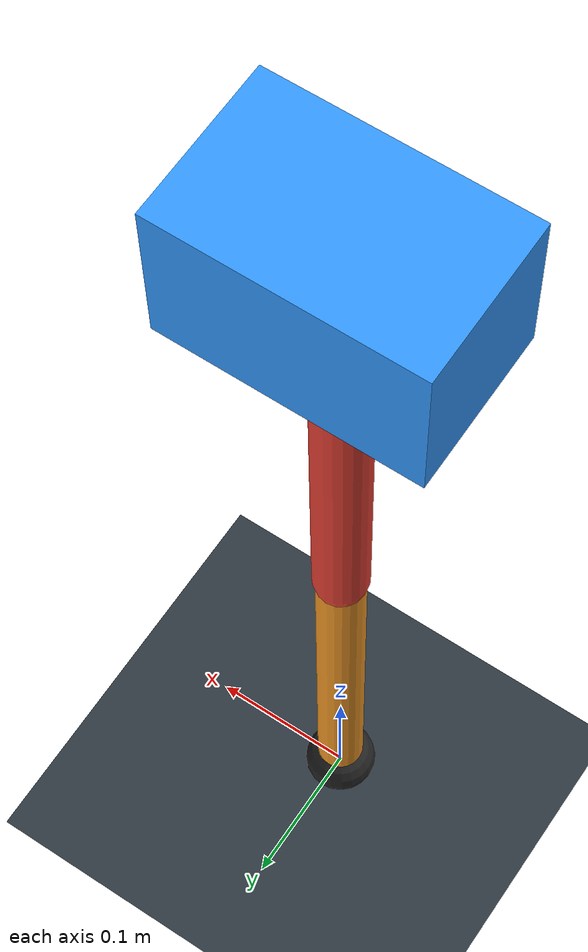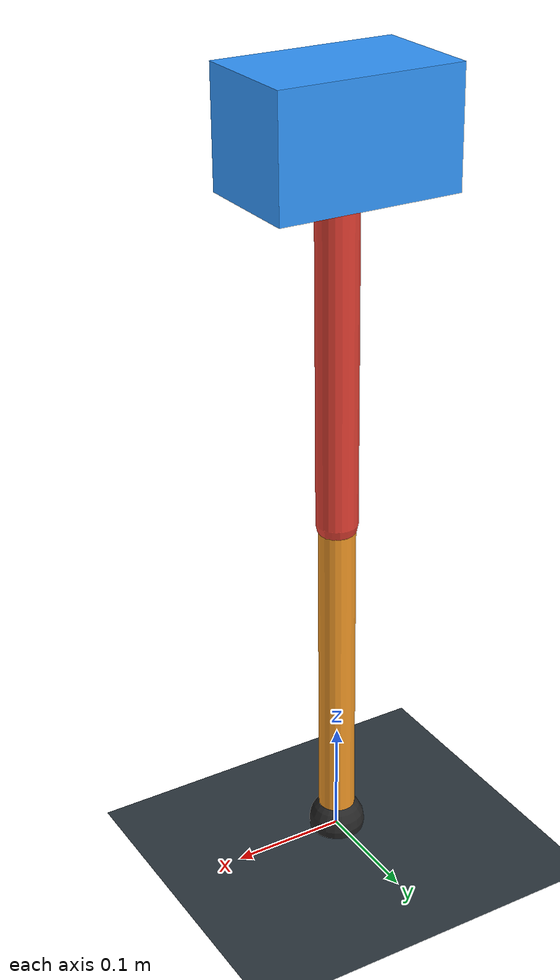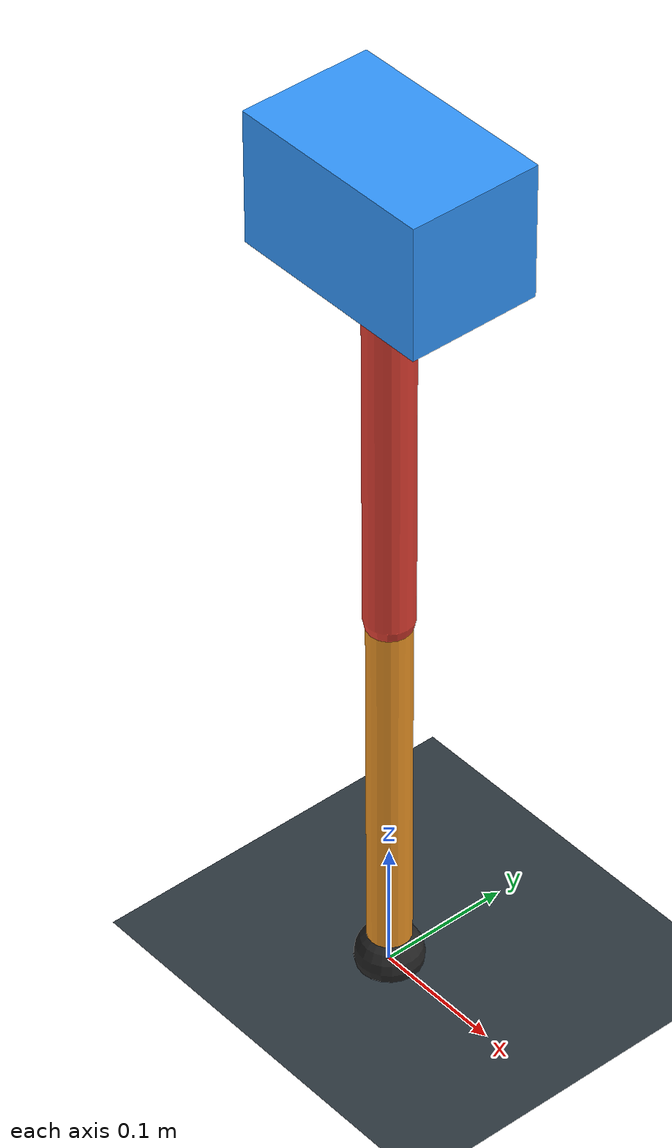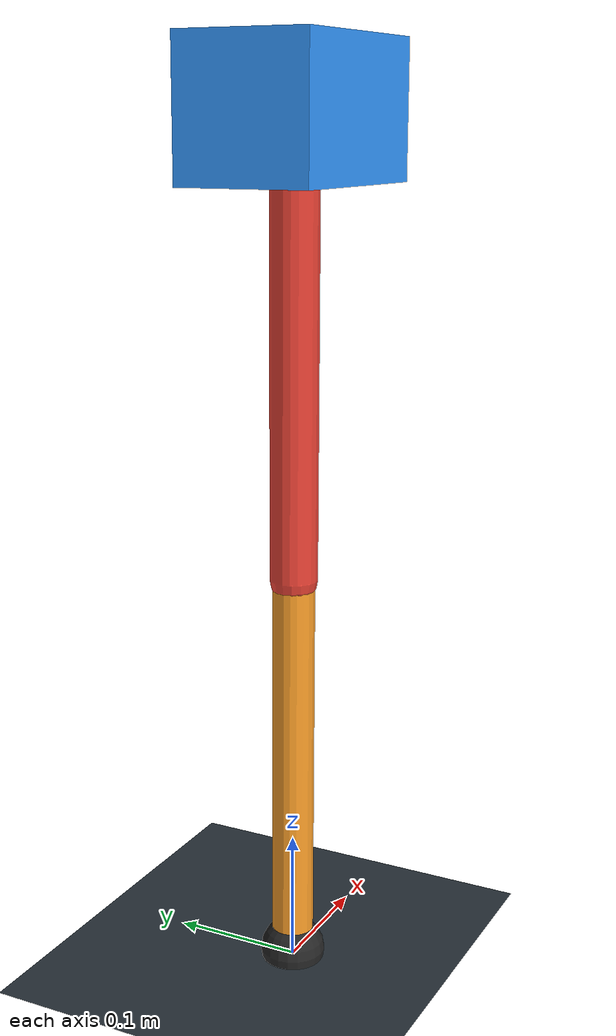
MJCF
<mujoco model="single_axis_two_bar">
  <compiler angle="radian" inertiafromgeom="true"/>
  <option timestep="0.001" integrator="implicitfast" gravity="0 0 -9.81"/>
  <default>
    <joint damping="0.08"/>
    <geom friction="1.2 0.01 0.0001" condim="3"/>
  </default>
  <worldbody>
    <geom name="floor" type="plane" size="5 5 0.1" rgba="0.18 0.22 0.25 1"/>
    <body name="carriage" pos="0 0 0.645108593190515">
      <joint name="pole_slide" type="slide" axis="0 0 1"/>
      <geom name="payload" type="box" size="0.08 0.05 0.05" mass="2.5752890944380322" rgba="0.2 0.6 1 1"/>
      <body name="thigh" pos="0 0 0">
        <joint name="hip" type="hinge" axis="0 1 0"/>
        <geom name="thigh_link" type="capsule" fromto="0 0 0 0 0 -0.33531170547525135" size="0.018" mass="0.23891402090438632" rgba="0.9 0.25 0.2 1"/>
        <body name="shank" pos="0 0 -0.33531170547525135">
          <joint name="knee" type="hinge" axis="0 1 0"/>
          <geom name="shank_link" type="capsule" fromto="0 0 0 0 0 -0.30397550399950635" size="0.016" mass="0.21658656328154838" rgba="0.95 0.6 0.15 1"/>
          <geom name="foot" type="sphere" pos="0 0 -0.30397550399950635" size="0.025" mass="0.03" rgba="0.15 0.15 0.15 1"/>
          <site name="toe" pos="0 0 -0.30397550399950635" size="0.008"/>
        </body>
      </body>
    </body>
  </worldbody>
  <actuator>
    <motor name="hip_motor" joint="hip" ctrlrange="-30.70796935494088 30.70796935494088"/>
    <motor name="knee_motor" joint="knee" ctrlrange="-76.21953009631868 76.21953009631868"/>
  </actuator>
</mujoco>
